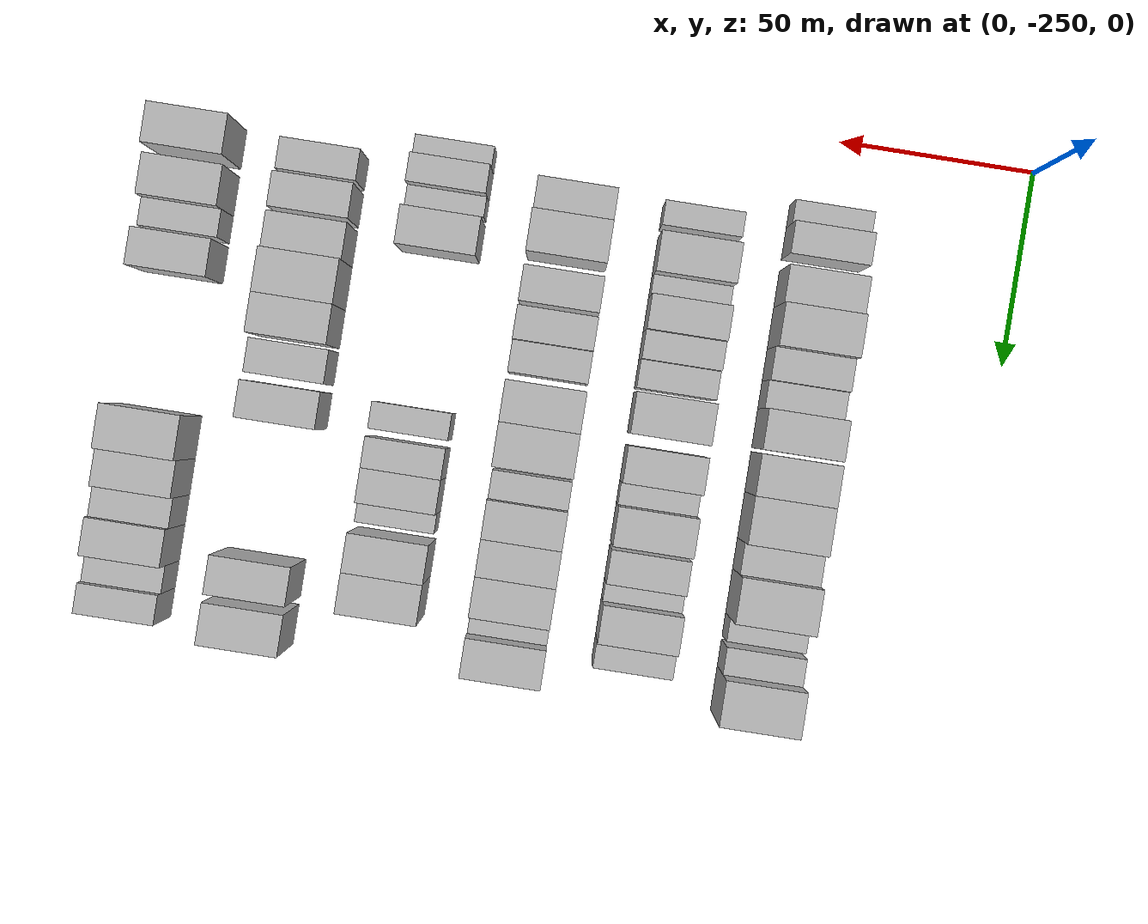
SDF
<sdf version="1.6">
 <world name="default">
  <model name="building_37">
   <static>1</static>
   <pose>50.0000 -229.1311 0 0.000000 0.000000 0.000000</pose>
   <link name="link">
    <pose>0 0 6.00 0 0 0</pose>
    <collision name="collision"><geometry><box><size>20.0000 5.9891 12.0000</size></box></geometry></collision>
    <visual name="visual">
     <cast_shadows>0</cast_shadows>
     <geometry><box><size>20.0000 5.9891 12.0000</size></box></geometry>
     <material>
      <script>
       <uri>model://HANNAS_wall/materials/scripts</uri>
       <uri>model://HANNAS_wall/materials/textures</uri>
       <name>vrc/HANNAS_wall</name>
      </script>
     </material>
    </visual>
   </link>
  </model>
  <model name="building_38">
   <static>1</static>
   <pose>50.0000 -222.0709 0 0.000000 0.000000 0.000000</pose>
   <link name="link">
    <pose>0 0 9.00 0 0 0</pose>
    <collision name="collision"><geometry><box><size>20.0000 8.1314 18.0000</size></box></geometry></collision>
    <visual name="visual">
     <cast_shadows>0</cast_shadows>
     <geometry><box><size>20.0000 8.1314 18.0000</size></box></geometry>
     <material>
      <script>
       <uri>model://HANNAS_wall/materials/scripts</uri>
       <uri>model://HANNAS_wall/materials/textures</uri>
       <name>vrc/HANNAS_wall</name>
      </script>
     </material>
    </visual>
   </link>
  </model>
  <model name="building_39">
   <static>1</static>
   <pose>50.0000 -210.2857 0 0.000000 0.000000 0.000000</pose>
   <link name="link">
    <pose>0 0 10.50 0 0 0</pose>
    <collision name="collision"><geometry><box><size>20.0000 9.4389 21.0000</size></box></geometry></collision>
    <visual name="visual">
     <cast_shadows>0</cast_shadows>
     <geometry><box><size>20.0000 9.4389 21.0000</size></box></geometry>
     <material>
      <script>
       <uri>model://HANNAS_wall/materials/scripts</uri>
       <uri>model://HANNAS_wall/materials/textures</uri>
       <name>vrc/HANNAS_wall</name>
      </script>
     </material>
    </visual>
   </link>
  </model>
  <model name="building_40">
   <static>1</static>
   <pose>50.0000 -200.2303 0 0.000000 0.000000 0.000000</pose>
   <link name="link">
    <pose>0 0 12.00 0 0 0</pose>
    <collision name="collision"><geometry><box><size>20.0000 10.6719 24.0000</size></box></geometry></collision>
    <visual name="visual">
     <cast_shadows>0</cast_shadows>
     <geometry><box><size>20.0000 10.6719 24.0000</size></box></geometry>
     <material>
      <script>
       <uri>model://HANNAS_wall/materials/scripts</uri>
       <uri>model://HANNAS_wall/materials/textures</uri>
       <name>vrc/HANNAS_wall</name>
      </script>
     </material>
    </visual>
   </link>
  </model>
  <model name="building_41">
   <static>1</static>
   <pose>50.0000 -190.7712 0 0.000000 0.000000 0.000000</pose>
   <link name="link">
    <pose>0 0 9.00 0 0 0</pose>
    <collision name="collision"><geometry><box><size>20.0000 8.2464 18.0000</size></box></geometry></collision>
    <visual name="visual">
     <cast_shadows>0</cast_shadows>
     <geometry><box><size>20.0000 8.2464 18.0000</size></box></geometry>
     <material>
      <script>
       <uri>model://HANNAS_wall/materials/scripts</uri>
       <uri>model://HANNAS_wall/materials/textures</uri>
       <name>vrc/HANNAS_wall</name>
      </script>
     </material>
    </visual>
   </link>
  </model>
  <model name="building_42">
   <static>1</static>
   <pose>50.0000 -183.0952 0 0.000000 0.000000 0.000000</pose>
   <link name="link">
    <pose>0 0 7.50 0 0 0</pose>
    <collision name="collision"><geometry><box><size>20.0000 7.1056 15.0000</size></box></geometry></collision>
    <visual name="visual">
     <cast_shadows>0</cast_shadows>
     <geometry><box><size>20.0000 7.1056 15.0000</size></box></geometry>
     <material>
      <script>
       <uri>model://HANNAS_wall/materials/scripts</uri>
       <uri>model://HANNAS_wall/materials/textures</uri>
       <name>vrc/HANNAS_wall</name>
      </script>
     </material>
    </visual>
   </link>
  </model>
  <model name="building_43">
   <static>1</static>
   <pose>50.0000 -174.5127 0 0.000000 0.000000 0.000000</pose>
   <link name="link">
    <pose>0 0 12.00 0 0 0</pose>
    <collision name="collision"><geometry><box><size>20.0000 10.0594 24.0000</size></box></geometry></collision>
    <visual name="visual">
     <cast_shadows>0</cast_shadows>
     <geometry><box><size>20.0000 10.0594 24.0000</size></box></geometry>
     <material>
      <script>
       <uri>model://HANNAS_wall/materials/scripts</uri>
       <uri>model://HANNAS_wall/materials/textures</uri>
       <name>vrc/HANNAS_wall</name>
      </script>
     </material>
    </visual>
   </link>
  </model>
  <model name="building_44">
   <static>1</static>
   <pose>50.0000 -163.3049 0 0.000000 0.000000 0.000000</pose>
   <link name="link">
    <pose>0 0 12.00 0 0 0</pose>
    <collision name="collision"><geometry><box><size>20.0000 10.3562 24.0000</size></box></geometry></collision>
    <visual name="visual">
     <cast_shadows>0</cast_shadows>
     <geometry><box><size>20.0000 10.3562 24.0000</size></box></geometry>
     <material>
      <script>
       <uri>model://HANNAS_wall/materials/scripts</uri>
       <uri>model://HANNAS_wall/materials/textures</uri>
       <name>vrc/HANNAS_wall</name>
      </script>
     </material>
    </visual>
   </link>
  </model>
  <model name="building_45">
   <static>1</static>
   <pose>50.0000 -152.1919 0 0.000000 0.000000 0.000000</pose>
   <link name="link">
    <pose>0 0 12.00 0 0 0</pose>
    <collision name="collision"><geometry><box><size>20.0000 11.8697 24.0000</size></box></geometry></collision>
    <visual name="visual">
     <cast_shadows>0</cast_shadows>
     <geometry><box><size>20.0000 11.8697 24.0000</size></box></geometry>
     <material>
      <script>
       <uri>model://HANNAS_wall/materials/scripts</uri>
       <uri>model://HANNAS_wall/materials/textures</uri>
       <name>vrc/HANNAS_wall</name>
      </script>
     </material>
    </visual>
   </link>
  </model>
  <model name="building_46">
   <static>1</static>
   <pose>50.0000 -142.2695 0 0.000000 0.000000 0.000000</pose>
   <link name="link">
    <pose>0 0 9.00 0 0 0</pose>
    <collision name="collision"><geometry><box><size>20.0000 7.9752 18.0000</size></box></geometry></collision>
    <visual name="visual">
     <cast_shadows>0</cast_shadows>
     <geometry><box><size>20.0000 7.9752 18.0000</size></box></geometry>
     <material>
      <script>
       <uri>model://HANNAS_wall/materials/scripts</uri>
       <uri>model://HANNAS_wall/materials/textures</uri>
       <name>vrc/HANNAS_wall</name>
      </script>
     </material>
    </visual>
   </link>
  </model>
  <model name="building_47">
   <static>1</static>
   <pose>50.0000 -132.5437 0 0.000000 0.000000 0.000000</pose>
   <link name="link">
    <pose>0 0 12.00 0 0 0</pose>
    <collision name="collision"><geometry><box><size>20.0000 11.4763 24.0000</size></box></geometry></collision>
    <visual name="visual">
     <cast_shadows>0</cast_shadows>
     <geometry><box><size>20.0000 11.4763 24.0000</size></box></geometry>
     <material>
      <script>
       <uri>model://HANNAS_wall/materials/scripts</uri>
       <uri>model://HANNAS_wall/materials/textures</uri>
       <name>vrc/HANNAS_wall</name>
      </script>
     </material>
    </visual>
   </link>
  </model>
  <model name="building_48">
   <static>1</static>
   <pose>50.0000 -123.8971 0 0.000000 0.000000 0.000000</pose>
   <link name="link">
    <pose>0 0 6.00 0 0 0</pose>
    <collision name="collision"><geometry><box><size>20.0000 5.8169 12.0000</size></box></geometry></collision>
    <visual name="visual">
     <cast_shadows>0</cast_shadows>
     <geometry><box><size>20.0000 5.8169 12.0000</size></box></geometry>
     <material>
      <script>
       <uri>model://HANNAS_wall/materials/scripts</uri>
       <uri>model://HANNAS_wall/materials/textures</uri>
       <name>vrc/HANNAS_wall</name>
      </script>
     </material>
    </visual>
   </link>
  </model>
  <model name="building_49">
   <static>1</static>
   <pose>50.0000 -116.5405 0 0.000000 0.000000 0.000000</pose>
   <link name="link">
    <pose>0 0 7.50 0 0 0</pose>
    <collision name="collision"><geometry><box><size>20.0000 6.8964 15.0000</size></box></geometry></collision>
    <visual name="visual">
     <cast_shadows>0</cast_shadows>
     <geometry><box><size>20.0000 6.8964 15.0000</size></box></geometry>
     <material>
      <script>
       <uri>model://HANNAS_wall/materials/scripts</uri>
       <uri>model://HANNAS_wall/materials/textures</uri>
       <name>vrc/HANNAS_wall</name>
      </script>
     </material>
    </visual>
   </link>
  </model>
  <model name="building_50">
   <static>1</static>
   <pose>50.0000 -107.3946 0 0.000000 0.000000 0.000000</pose>
   <link name="link">
    <pose>0 0 12.00 0 0 0</pose>
    <collision name="collision"><geometry><box><size>20.0000 11.3955 24.0000</size></box></geometry></collision>
    <visual name="visual">
     <cast_shadows>0</cast_shadows>
     <geometry><box><size>20.0000 11.3955 24.0000</size></box></geometry>
     <material>
      <script>
       <uri>model://HANNAS_wall/materials/scripts</uri>
       <uri>model://HANNAS_wall/materials/textures</uri>
       <name>vrc/HANNAS_wall</name>
      </script>
     </material>
    </visual>
   </link>
  </model>
  <model name="building_159">
   <static>1</static>
   <pose>82.0000 -223.4754 0 0.000000 0.000000 0.000000</pose>
   <link name="link">
    <pose>0 0 7.50 0 0 0</pose>
    <collision name="collision"><geometry><box><size>20.0000 6.2040 15.0000</size></box></geometry></collision>
    <visual name="visual">
     <cast_shadows>0</cast_shadows>
     <geometry><box><size>20.0000 6.2040 15.0000</size></box></geometry>
     <material>
      <script>
       <uri>model://HANNAS_wall/materials/scripts</uri>
       <uri>model://HANNAS_wall/materials/textures</uri>
       <name>vrc/HANNAS_wall</name>
      </script>
     </material>
    </visual>
   </link>
  </model>
  <model name="building_160">
   <static>1</static>
   <pose>82.0000 -213.3400 0 0.000000 0.000000 0.000000</pose>
   <link name="link">
    <pose>0 0 10.50 0 0 0</pose>
    <collision name="collision"><geometry><box><size>20.0000 10.0669 21.0000</size></box></geometry></collision>
    <visual name="visual">
     <cast_shadows>0</cast_shadows>
     <geometry><box><size>20.0000 10.0669 21.0000</size></box></geometry>
     <material>
      <script>
       <uri>model://HANNAS_wall/materials/scripts</uri>
       <uri>model://HANNAS_wall/materials/textures</uri>
       <name>vrc/HANNAS_wall</name>
      </script>
     </material>
    </visual>
   </link>
  </model>
  <model name="building_161">
   <static>1</static>
   <pose>82.0000 -205.5744 0 0.000000 0.000000 0.000000</pose>
   <link name="link">
    <pose>0 0 6.00 0 0 0</pose>
    <collision name="collision"><geometry><box><size>20.0000 5.4645 12.0000</size></box></geometry></collision>
    <visual name="visual">
     <cast_shadows>0</cast_shadows>
     <geometry><box><size>20.0000 5.4645 12.0000</size></box></geometry>
     <material>
      <script>
       <uri>model://HANNAS_wall/materials/scripts</uri>
       <uri>model://HANNAS_wall/materials/textures</uri>
       <name>vrc/HANNAS_wall</name>
      </script>
     </material>
    </visual>
   </link>
  </model>
  <model name="building_162">
   <static>1</static>
   <pose>82.0000 -198.4793 0 0.000000 0.000000 0.000000</pose>
   <link name="link">
    <pose>0 0 10.50 0 0 0</pose>
    <collision name="collision"><geometry><box><size>20.0000 8.7257 21.0000</size></box></geometry></collision>
    <visual name="visual">
     <cast_shadows>0</cast_shadows>
     <geometry><box><size>20.0000 8.7257 21.0000</size></box></geometry>
     <material>
      <script>
       <uri>model://HANNAS_wall/materials/scripts</uri>
       <uri>model://HANNAS_wall/materials/textures</uri>
       <name>vrc/HANNAS_wall</name>
      </script>
     </material>
    </visual>
   </link>
  </model>
  <model name="building_163">
   <static>1</static>
   <pose>82.0000 -190.4858 0 0.000000 0.000000 0.000000</pose>
   <link name="link">
    <pose>0 0 9.00 0 0 0</pose>
    <collision name="collision"><geometry><box><size>20.0000 7.2614 18.0000</size></box></geometry></collision>
    <visual name="visual">
     <cast_shadows>0</cast_shadows>
     <geometry><box><size>20.0000 7.2614 18.0000</size></box></geometry>
     <material>
      <script>
       <uri>model://HANNAS_wall/materials/scripts</uri>
       <uri>model://HANNAS_wall/materials/textures</uri>
       <name>vrc/HANNAS_wall</name>
      </script>
     </material>
    </visual>
   </link>
  </model>
  <model name="building_164">
   <static>1</static>
   <pose>82.0000 -183.2726 0 0.000000 0.000000 0.000000</pose>
   <link name="link">
    <pose>0 0 7.50 0 0 0</pose>
    <collision name="collision"><geometry><box><size>20.0000 7.1650 15.0000</size></box></geometry></collision>
    <visual name="visual">
     <cast_shadows>0</cast_shadows>
     <geometry><box><size>20.0000 7.1650 15.0000</size></box></geometry>
     <material>
      <script>
       <uri>model://HANNAS_wall/materials/scripts</uri>
       <uri>model://HANNAS_wall/materials/textures</uri>
       <name>vrc/HANNAS_wall</name>
      </script>
     </material>
    </visual>
   </link>
  </model>
  <model name="building_165">
   <static>1</static>
   <pose>82.0000 -173.5163 0 0.000000 0.000000 0.000000</pose>
   <link name="link">
    <pose>0 0 10.50 0 0 0</pose>
    <collision name="collision"><geometry><box><size>20.0000 10.3476 21.0000</size></box></geometry></collision>
    <visual name="visual">
     <cast_shadows>0</cast_shadows>
     <geometry><box><size>20.0000 10.3476 21.0000</size></box></geometry>
     <material>
      <script>
       <uri>model://HANNAS_wall/materials/scripts</uri>
       <uri>model://HANNAS_wall/materials/textures</uri>
       <name>vrc/HANNAS_wall</name>
      </script>
     </material>
    </visual>
   </link>
  </model>
  <model name="building_166">
   <static>1</static>
   <pose>82.0000 -160.7306 0 0.000000 0.000000 0.000000</pose>
   <link name="link">
    <pose>0 0 10.50 0 0 0</pose>
    <collision name="collision"><geometry><box><size>20.0000 9.2237 21.0000</size></box></geometry></collision>
    <visual name="visual">
     <cast_shadows>0</cast_shadows>
     <geometry><box><size>20.0000 9.2237 21.0000</size></box></geometry>
     <material>
      <script>
       <uri>model://HANNAS_wall/materials/scripts</uri>
       <uri>model://HANNAS_wall/materials/textures</uri>
       <name>vrc/HANNAS_wall</name>
      </script>
     </material>
    </visual>
   </link>
  </model>
  <model name="building_167">
   <static>1</static>
   <pose>82.0000 -153.2493 0 0.000000 0.000000 0.000000</pose>
   <link name="link">
    <pose>0 0 6.00 0 0 0</pose>
    <collision name="collision"><geometry><box><size>20.0000 5.7389 12.0000</size></box></geometry></collision>
    <visual name="visual">
     <cast_shadows>0</cast_shadows>
     <geometry><box><size>20.0000 5.7389 12.0000</size></box></geometry>
     <material>
      <script>
       <uri>model://HANNAS_wall/materials/scripts</uri>
       <uri>model://HANNAS_wall/materials/textures</uri>
       <name>vrc/HANNAS_wall</name>
      </script>
     </material>
    </visual>
   </link>
  </model>
  <model name="building_168">
   <static>1</static>
   <pose>82.0000 -145.4439 0 0.000000 0.000000 0.000000</pose>
   <link name="link">
    <pose>0 0 10.50 0 0 0</pose>
    <collision name="collision"><geometry><box><size>20.0000 9.8719 21.0000</size></box></geometry></collision>
    <visual name="visual">
     <cast_shadows>0</cast_shadows>
     <geometry><box><size>20.0000 9.8719 21.0000</size></box></geometry>
     <material>
      <script>
       <uri>model://HANNAS_wall/materials/scripts</uri>
       <uri>model://HANNAS_wall/materials/textures</uri>
       <name>vrc/HANNAS_wall</name>
      </script>
     </material>
    </visual>
   </link>
  </model>
  <model name="building_169">
   <static>1</static>
   <pose>82.0000 -135.2447 0 0.000000 0.000000 0.000000</pose>
   <link name="link">
    <pose>0 0 9.00 0 0 0</pose>
    <collision name="collision"><geometry><box><size>20.0000 8.5265 18.0000</size></box></geometry></collision>
    <visual name="visual">
     <cast_shadows>0</cast_shadows>
     <geometry><box><size>20.0000 8.5265 18.0000</size></box></geometry>
     <material>
      <script>
       <uri>model://HANNAS_wall/materials/scripts</uri>
       <uri>model://HANNAS_wall/materials/textures</uri>
       <name>vrc/HANNAS_wall</name>
      </script>
     </material>
    </visual>
   </link>
  </model>
  <model name="building_170">
   <static>1</static>
   <pose>82.0000 -128.5446 0 0.000000 0.000000 0.000000</pose>
   <link name="link">
    <pose>0 0 6.00 0 0 0</pose>
    <collision name="collision"><geometry><box><size>20.0000 4.8736 12.0000</size></box></geometry></collision>
    <visual name="visual">
     <cast_shadows>0</cast_shadows>
     <geometry><box><size>20.0000 4.8736 12.0000</size></box></geometry>
     <material>
      <script>
       <uri>model://HANNAS_wall/materials/scripts</uri>
       <uri>model://HANNAS_wall/materials/textures</uri>
       <name>vrc/HANNAS_wall</name>
      </script>
     </material>
    </visual>
   </link>
  </model>
  <model name="building_171">
   <static>1</static>
   <pose>82.0000 -121.3181 0 0.000000 0.000000 0.000000</pose>
   <link name="link">
    <pose>0 0 10.50 0 0 0</pose>
    <collision name="collision"><geometry><box><size>20.0000 9.5793 21.0000</size></box></geometry></collision>
    <visual name="visual">
     <cast_shadows>0</cast_shadows>
     <geometry><box><size>20.0000 9.5793 21.0000</size></box></geometry>
     <material>
      <script>
       <uri>model://HANNAS_wall/materials/scripts</uri>
       <uri>model://HANNAS_wall/materials/textures</uri>
       <name>vrc/HANNAS_wall</name>
      </script>
     </material>
    </visual>
   </link>
  </model>
  <model name="building_172">
   <static>1</static>
   <pose>82.0000 -113.1577 0 0.000000 0.000000 0.000000</pose>
   <link name="link">
    <pose>0 0 7.50 0 0 0</pose>
    <collision name="collision"><geometry><box><size>20.0000 6.7416 15.0000</size></box></geometry></collision>
    <visual name="visual">
     <cast_shadows>0</cast_shadows>
     <geometry><box><size>20.0000 6.7416 15.0000</size></box></geometry>
     <material>
      <script>
       <uri>model://HANNAS_wall/materials/scripts</uri>
       <uri>model://HANNAS_wall/materials/textures</uri>
       <name>vrc/HANNAS_wall</name>
      </script>
     </material>
    </visual>
   </link>
  </model>
  <model name="building_279">
   <static>1</static>
   <pose>114.0000 -222.8635 0 0.000000 0.000000 0.000000</pose>
   <link name="link">
    <pose>0 0 9.00 0 0 0</pose>
    <collision name="collision"><geometry><box><size>20.0000 8.7250 18.0000</size></box></geometry></collision>
    <visual name="visual">
     <cast_shadows>0</cast_shadows>
     <geometry><box><size>20.0000 8.7250 18.0000</size></box></geometry>
     <material>
      <script>
       <uri>model://HANNAS_wall/materials/scripts</uri>
       <uri>model://HANNAS_wall/materials/textures</uri>
       <name>vrc/HANNAS_wall</name>
      </script>
     </material>
    </visual>
   </link>
  </model>
  <model name="building_280">
   <static>1</static>
   <pose>114.0000 -213.2306 0 0.000000 0.000000 0.000000</pose>
   <link name="link">
    <pose>0 0 12.00 0 0 0</pose>
    <collision name="collision"><geometry><box><size>20.0000 10.5408 24.0000</size></box></geometry></collision>
    <visual name="visual">
     <cast_shadows>0</cast_shadows>
     <geometry><box><size>20.0000 10.5408 24.0000</size></box></geometry>
     <material>
      <script>
       <uri>model://HANNAS_wall/materials/scripts</uri>
       <uri>model://HANNAS_wall/materials/textures</uri>
       <name>vrc/HANNAS_wall</name>
      </script>
     </material>
    </visual>
   </link>
  </model>
  <model name="building_281">
   <static>1</static>
   <pose>114.0000 -200.4887 0 0.000000 0.000000 0.000000</pose>
   <link name="link">
    <pose>0 0 10.50 0 0 0</pose>
    <collision name="collision"><geometry><box><size>20.0000 8.9430 21.0000</size></box></geometry></collision>
    <visual name="visual">
     <cast_shadows>0</cast_shadows>
     <geometry><box><size>20.0000 8.9430 21.0000</size></box></geometry>
     <material>
      <script>
       <uri>model://HANNAS_wall/materials/scripts</uri>
       <uri>model://HANNAS_wall/materials/textures</uri>
       <name>vrc/HANNAS_wall</name>
      </script>
     </material>
    </visual>
   </link>
  </model>
  <model name="building_282">
   <static>1</static>
   <pose>114.0000 -190.8128 0 0.000000 0.000000 0.000000</pose>
   <link name="link">
    <pose>0 0 10.50 0 0 0</pose>
    <collision name="collision"><geometry><box><size>20.0000 8.4088 21.0000</size></box></geometry></collision>
    <visual name="visual">
     <cast_shadows>0</cast_shadows>
     <geometry><box><size>20.0000 8.4088 21.0000</size></box></geometry>
     <material>
      <script>
       <uri>model://HANNAS_wall/materials/scripts</uri>
       <uri>model://HANNAS_wall/materials/textures</uri>
       <name>vrc/HANNAS_wall</name>
      </script>
     </material>
    </visual>
   </link>
  </model>
  <model name="building_283">
   <static>1</static>
   <pose>114.0000 -182.5916 0 0.000000 0.000000 0.000000</pose>
   <link name="link">
    <pose>0 0 9.00 0 0 0</pose>
    <collision name="collision"><geometry><box><size>20.0000 8.0336 18.0000</size></box></geometry></collision>
    <visual name="visual">
     <cast_shadows>0</cast_shadows>
     <geometry><box><size>20.0000 8.0336 18.0000</size></box></geometry>
     <material>
      <script>
       <uri>model://HANNAS_wall/materials/scripts</uri>
       <uri>model://HANNAS_wall/materials/textures</uri>
       <name>vrc/HANNAS_wall</name>
      </script>
     </material>
    </visual>
   </link>
  </model>
  <model name="building_284">
   <static>1</static>
   <pose>114.0000 -171.3998 0 0.000000 0.000000 0.000000</pose>
   <link name="link">
    <pose>0 0 12.00 0 0 0</pose>
    <collision name="collision"><geometry><box><size>20.0000 10.3501 24.0000</size></box></geometry></collision>
    <visual name="visual">
     <cast_shadows>0</cast_shadows>
     <geometry><box><size>20.0000 10.3501 24.0000</size></box></geometry>
     <material>
      <script>
       <uri>model://HANNAS_wall/materials/scripts</uri>
       <uri>model://HANNAS_wall/materials/textures</uri>
       <name>vrc/HANNAS_wall</name>
      </script>
     </material>
    </visual>
   </link>
  </model>
  <model name="building_285">
   <static>1</static>
   <pose>114.0000 -160.7141 0 0.000000 0.000000 0.000000</pose>
   <link name="link">
    <pose>0 0 12.00 0 0 0</pose>
    <collision name="collision"><geometry><box><size>20.0000 11.0211 24.0000</size></box></geometry></collision>
    <visual name="visual">
     <cast_shadows>0</cast_shadows>
     <geometry><box><size>20.0000 11.0211 24.0000</size></box></geometry>
     <material>
      <script>
       <uri>model://HANNAS_wall/materials/scripts</uri>
       <uri>model://HANNAS_wall/materials/textures</uri>
       <name>vrc/HANNAS_wall</name>
      </script>
     </material>
    </visual>
   </link>
  </model>
  <model name="building_286">
   <static>1</static>
   <pose>114.0000 -150.6014 0 0.000000 0.000000 0.000000</pose>
   <link name="link">
    <pose>0 0 7.50 0 0 0</pose>
    <collision name="collision"><geometry><box><size>20.0000 7.2043 15.0000</size></box></geometry></collision>
    <visual name="visual">
     <cast_shadows>0</cast_shadows>
     <geometry><box><size>20.0000 7.2043 15.0000</size></box></geometry>
     <material>
      <script>
       <uri>model://HANNAS_wall/materials/scripts</uri>
       <uri>model://HANNAS_wall/materials/textures</uri>
       <name>vrc/HANNAS_wall</name>
      </script>
     </material>
    </visual>
   </link>
  </model>
  <model name="building_287">
   <static>1</static>
   <pose>114.0000 -142.1306 0 0.000000 0.000000 0.000000</pose>
   <link name="link">
    <pose>0 0 10.50 0 0 0</pose>
    <collision name="collision"><geometry><box><size>20.0000 9.7373 21.0000</size></box></geometry></collision>
    <visual name="visual">
     <cast_shadows>0</cast_shadows>
     <geometry><box><size>20.0000 9.7373 21.0000</size></box></geometry>
     <material>
      <script>
       <uri>model://HANNAS_wall/materials/scripts</uri>
       <uri>model://HANNAS_wall/materials/textures</uri>
       <name>vrc/HANNAS_wall</name>
      </script>
     </material>
    </visual>
   </link>
  </model>
  <model name="building_288">
   <static>1</static>
   <pose>114.0000 -132.6414 0 0.000000 0.000000 0.000000</pose>
   <link name="link">
    <pose>0 0 10.50 0 0 0</pose>
    <collision name="collision"><geometry><box><size>20.0000 9.2411 21.0000</size></box></geometry></collision>
    <visual name="visual">
     <cast_shadows>0</cast_shadows>
     <geometry><box><size>20.0000 9.2411 21.0000</size></box></geometry>
     <material>
      <script>
       <uri>model://HANNAS_wall/materials/scripts</uri>
       <uri>model://HANNAS_wall/materials/textures</uri>
       <name>vrc/HANNAS_wall</name>
      </script>
     </material>
    </visual>
   </link>
  </model>
  <model name="building_289">
   <static>1</static>
   <pose>114.0000 -122.9767 0 0.000000 0.000000 0.000000</pose>
   <link name="link">
    <pose>0 0 10.50 0 0 0</pose>
    <collision name="collision"><geometry><box><size>20.0000 10.0884 21.0000</size></box></geometry></collision>
    <visual name="visual">
     <cast_shadows>0</cast_shadows>
     <geometry><box><size>20.0000 10.0884 21.0000</size></box></geometry>
     <material>
      <script>
       <uri>model://HANNAS_wall/materials/scripts</uri>
       <uri>model://HANNAS_wall/materials/textures</uri>
       <name>vrc/HANNAS_wall</name>
      </script>
     </material>
    </visual>
   </link>
  </model>
  <model name="building_290">
   <static>1</static>
   <pose>114.0000 -115.4494 0 0.000000 0.000000 0.000000</pose>
   <link name="link">
    <pose>0 0 6.00 0 0 0</pose>
    <collision name="collision"><geometry><box><size>20.0000 4.9661 12.0000</size></box></geometry></collision>
    <visual name="visual">
     <cast_shadows>0</cast_shadows>
     <geometry><box><size>20.0000 4.9661 12.0000</size></box></geometry>
     <material>
      <script>
       <uri>model://HANNAS_wall/materials/scripts</uri>
       <uri>model://HANNAS_wall/materials/textures</uri>
       <name>vrc/HANNAS_wall</name>
      </script>
     </material>
    </visual>
   </link>
  </model>
  <model name="building_291">
   <static>1</static>
   <pose>114.0000 -108.0243 0 0.000000 0.000000 0.000000</pose>
   <link name="link">
    <pose>0 0 10.50 0 0 0</pose>
    <collision name="collision"><geometry><box><size>20.0000 9.8841 21.0000</size></box></geometry></collision>
    <visual name="visual">
     <cast_shadows>0</cast_shadows>
     <geometry><box><size>20.0000 9.8841 21.0000</size></box></geometry>
     <material>
      <script>
       <uri>model://HANNAS_wall/materials/scripts</uri>
       <uri>model://HANNAS_wall/materials/textures</uri>
       <name>vrc/HANNAS_wall</name>
      </script>
     </material>
    </visual>
   </link>
  </model>
  <model name="building_393">
   <static>1</static>
   <pose>146.0000 -230.7259 0 0.000000 0.000000 0.000000</pose>
   <link name="link">
    <pose>0 0 6.00 0 0 0</pose>
    <collision name="collision"><geometry><box><size>20.0000 5.4463 12.0000</size></box></geometry></collision>
    <visual name="visual">
     <cast_shadows>0</cast_shadows>
     <geometry><box><size>20.0000 5.4463 12.0000</size></box></geometry>
     <material>
      <script>
       <uri>model://HANNAS_wall/materials/scripts</uri>
       <uri>model://HANNAS_wall/materials/textures</uri>
       <name>vrc/HANNAS_wall</name>
      </script>
     </material>
    </visual>
   </link>
  </model>
  <model name="building_394">
   <static>1</static>
   <pose>146.0000 -224.3953 0 0.000000 0.000000 0.000000</pose>
   <link name="link">
    <pose>0 0 9.00 0 0 0</pose>
    <collision name="collision"><geometry><box><size>20.0000 7.2148 18.0000</size></box></geometry></collision>
    <visual name="visual">
     <cast_shadows>0</cast_shadows>
     <geometry><box><size>20.0000 7.2148 18.0000</size></box></geometry>
     <material>
      <script>
       <uri>model://HANNAS_wall/materials/scripts</uri>
       <uri>model://HANNAS_wall/materials/textures</uri>
       <name>vrc/HANNAS_wall</name>
      </script>
     </material>
    </visual>
   </link>
  </model>
  <model name="building_395">
   <static>1</static>
   <pose>146.0000 -218.2024 0 0.000000 0.000000 0.000000</pose>
   <link name="link">
    <pose>0 0 6.00 0 0 0</pose>
    <collision name="collision"><geometry><box><size>20.0000 5.1711 12.0000</size></box></geometry></collision>
    <visual name="visual">
     <cast_shadows>0</cast_shadows>
     <geometry><box><size>20.0000 5.1711 12.0000</size></box></geometry>
     <material>
      <script>
       <uri>model://HANNAS_wall/materials/scripts</uri>
       <uri>model://HANNAS_wall/materials/textures</uri>
       <name>vrc/HANNAS_wall</name>
      </script>
     </material>
    </visual>
   </link>
  </model>
  <model name="building_396">
   <static>1</static>
   <pose>146.0000 -209.8257 0 0.000000 0.000000 0.000000</pose>
   <link name="link">
    <pose>0 0 10.50 0 0 0</pose>
    <collision name="collision"><geometry><box><size>20.0000 9.5822 21.0000</size></box></geometry></collision>
    <visual name="visual">
     <cast_shadows>0</cast_shadows>
     <geometry><box><size>20.0000 9.5822 21.0000</size></box></geometry>
     <material>
      <script>
       <uri>model://HANNAS_wall/materials/scripts</uri>
       <uri>model://HANNAS_wall/materials/textures</uri>
       <name>vrc/HANNAS_wall</name>
      </script>
     </material>
    </visual>
   </link>
  </model>
  <model name="building_397">
   <static>1</static>
   <pose>146.0000 -162.8898 0 0.000000 0.000000 0.000000</pose>
   <link name="link">
    <pose>0 0 7.50 0 0 0</pose>
    <collision name="collision"><geometry><box><size>20.0000 6.7632 15.0000</size></box></geometry></collision>
    <visual name="visual">
     <cast_shadows>0</cast_shadows>
     <geometry><box><size>20.0000 6.7632 15.0000</size></box></geometry>
     <material>
      <script>
       <uri>model://HANNAS_wall/materials/scripts</uri>
       <uri>model://HANNAS_wall/materials/textures</uri>
       <name>vrc/HANNAS_wall</name>
      </script>
     </material>
    </visual>
   </link>
  </model>
  <model name="building_398">
   <static>1</static>
   <pose>146.0000 -153.6223 0 0.000000 0.000000 0.000000</pose>
   <link name="link">
    <pose>0 0 9.00 0 0 0</pose>
    <collision name="collision"><geometry><box><size>20.0000 7.7718 18.0000</size></box></geometry></collision>
    <visual name="visual">
     <cast_shadows>0</cast_shadows>
     <geometry><box><size>20.0000 7.7718 18.0000</size></box></geometry>
     <material>
      <script>
       <uri>model://HANNAS_wall/materials/scripts</uri>
       <uri>model://HANNAS_wall/materials/textures</uri>
       <name>vrc/HANNAS_wall</name>
      </script>
     </material>
    </visual>
   </link>
  </model>
  <model name="building_399">
   <static>1</static>
   <pose>146.0000 -145.3928 0 0.000000 0.000000 0.000000</pose>
   <link name="link">
    <pose>0 0 9.00 0 0 0</pose>
    <collision name="collision"><geometry><box><size>20.0000 8.6873 18.0000</size></box></geometry></collision>
    <visual name="visual">
     <cast_shadows>0</cast_shadows>
     <geometry><box><size>20.0000 8.6873 18.0000</size></box></geometry>
     <material>
      <script>
       <uri>model://HANNAS_wall/materials/scripts</uri>
       <uri>model://HANNAS_wall/materials/textures</uri>
       <name>vrc/HANNAS_wall</name>
      </script>
     </material>
    </visual>
   </link>
  </model>
  <model name="building_400">
   <static>1</static>
   <pose>146.0000 -138.5187 0 0.000000 0.000000 0.000000</pose>
   <link name="link">
    <pose>0 0 6.00 0 0 0</pose>
    <collision name="collision"><geometry><box><size>20.0000 5.0609 12.0000</size></box></geometry></collision>
    <visual name="visual">
     <cast_shadows>0</cast_shadows>
     <geometry><box><size>20.0000 5.0609 12.0000</size></box></geometry>
     <material>
      <script>
       <uri>model://HANNAS_wall/materials/scripts</uri>
       <uri>model://HANNAS_wall/materials/textures</uri>
       <name>vrc/HANNAS_wall</name>
      </script>
     </material>
    </visual>
   </link>
  </model>
  <model name="building_401">
   <static>1</static>
   <pose>146.0000 -129.1383 0 0.000000 0.000000 0.000000</pose>
   <link name="link">
    <pose>0 0 12.00 0 0 0</pose>
    <collision name="collision"><geometry><box><size>20.0000 9.7000 24.0000</size></box></geometry></collision>
    <visual name="visual">
     <cast_shadows>0</cast_shadows>
     <geometry><box><size>20.0000 9.7000 24.0000</size></box></geometry>
     <material>
      <script>
       <uri>model://HANNAS_wall/materials/scripts</uri>
       <uri>model://HANNAS_wall/materials/textures</uri>
       <name>vrc/HANNAS_wall</name>
      </script>
     </material>
    </visual>
   </link>
  </model>
  <model name="building_402">
   <static>1</static>
   <pose>146.0000 -119.2692 0 0.000000 0.000000 0.000000</pose>
   <link name="link">
    <pose>0 0 12.00 0 0 0</pose>
    <collision name="collision"><geometry><box><size>20.0000 10.0382 24.0000</size></box></geometry></collision>
    <visual name="visual">
     <cast_shadows>0</cast_shadows>
     <geometry><box><size>20.0000 10.0382 24.0000</size></box></geometry>
     <material>
      <script>
       <uri>model://HANNAS_wall/materials/scripts</uri>
       <uri>model://HANNAS_wall/materials/textures</uri>
       <name>vrc/HANNAS_wall</name>
      </script>
     </material>
    </visual>
   </link>
  </model>
  <model name="building_515">
   <static>1</static>
   <pose>178.0000 -222.8401 0 0.000000 0.000000 0.000000</pose>
   <link name="link">
    <pose>0 0 9.00 0 0 0</pose>
    <collision name="collision"><geometry><box><size>20.0000 7.8616 18.0000</size></box></geometry></collision>
    <visual name="visual">
     <cast_shadows>0</cast_shadows>
     <geometry><box><size>20.0000 7.8616 18.0000</size></box></geometry>
     <material>
      <script>
       <uri>model://HANNAS_wall/materials/scripts</uri>
       <uri>model://HANNAS_wall/materials/textures</uri>
       <name>vrc/HANNAS_wall</name>
      </script>
     </material>
    </visual>
   </link>
  </model>
  <model name="building_516">
   <static>1</static>
   <pose>178.0000 -213.5523 0 0.000000 0.000000 0.000000</pose>
   <link name="link">
    <pose>0 0 10.50 0 0 0</pose>
    <collision name="collision"><geometry><box><size>20.0000 8.7140 21.0000</size></box></geometry></collision>
    <visual name="visual">
     <cast_shadows>0</cast_shadows>
     <geometry><box><size>20.0000 8.7140 21.0000</size></box></geometry>
     <material>
      <script>
       <uri>model://HANNAS_wall/materials/scripts</uri>
       <uri>model://HANNAS_wall/materials/textures</uri>
       <name>vrc/HANNAS_wall</name>
      </script>
     </material>
    </visual>
   </link>
  </model>
  <model name="building_517">
   <static>1</static>
   <pose>178.0000 -203.6107 0 0.000000 0.000000 0.000000</pose>
   <link name="link">
    <pose>0 0 10.50 0 0 0</pose>
    <collision name="collision"><geometry><box><size>20.0000 9.1693 21.0000</size></box></geometry></collision>
    <visual name="visual">
     <cast_shadows>0</cast_shadows>
     <geometry><box><size>20.0000 9.1693 21.0000</size></box></geometry>
     <material>
      <script>
       <uri>model://HANNAS_wall/materials/scripts</uri>
       <uri>model://HANNAS_wall/materials/textures</uri>
       <name>vrc/HANNAS_wall</name>
      </script>
     </material>
    </visual>
   </link>
  </model>
  <model name="building_518">
   <static>1</static>
   <pose>178.0000 -193.4658 0 0.000000 0.000000 0.000000</pose>
   <link name="link">
    <pose>0 0 12.00 0 0 0</pose>
    <collision name="collision"><geometry><box><size>20.0000 11.1204 24.0000</size></box></geometry></collision>
    <visual name="visual">
     <cast_shadows>0</cast_shadows>
     <geometry><box><size>20.0000 11.1204 24.0000</size></box></geometry>
     <material>
      <script>
       <uri>model://HANNAS_wall/materials/scripts</uri>
       <uri>model://HANNAS_wall/materials/textures</uri>
       <name>vrc/HANNAS_wall</name>
      </script>
     </material>
    </visual>
   </link>
  </model>
  <model name="building_519">
   <static>1</static>
   <pose>178.0000 -182.9589 0 0.000000 0.000000 0.000000</pose>
   <link name="link">
    <pose>0 0 12.00 0 0 0</pose>
    <collision name="collision"><geometry><box><size>20.0000 9.8934 24.0000</size></box></geometry></collision>
    <visual name="visual">
     <cast_shadows>0</cast_shadows>
     <geometry><box><size>20.0000 9.8934 24.0000</size></box></geometry>
     <material>
      <script>
       <uri>model://HANNAS_wall/materials/scripts</uri>
       <uri>model://HANNAS_wall/materials/textures</uri>
       <name>vrc/HANNAS_wall</name>
      </script>
     </material>
    </visual>
   </link>
  </model>
  <model name="building_520">
   <static>1</static>
   <pose>178.0000 -172.7530 0 0.000000 0.000000 0.000000</pose>
   <link name="link">
    <pose>0 0 9.00 0 0 0</pose>
    <collision name="collision"><geometry><box><size>20.0000 8.5184 18.0000</size></box></geometry></collision>
    <visual name="visual">
     <cast_shadows>0</cast_shadows>
     <geometry><box><size>20.0000 8.5184 18.0000</size></box></geometry>
     <material>
      <script>
       <uri>model://HANNAS_wall/materials/scripts</uri>
       <uri>model://HANNAS_wall/materials/textures</uri>
       <name>vrc/HANNAS_wall</name>
      </script>
     </material>
    </visual>
   </link>
  </model>
  <model name="building_521">
   <static>1</static>
   <pose>178.0000 -161.8715 0 0.000000 0.000000 0.000000</pose>
   <link name="link">
    <pose>0 0 10.50 0 0 0</pose>
    <collision name="collision"><geometry><box><size>20.0000 9.2446 21.0000</size></box></geometry></collision>
    <visual name="visual">
     <cast_shadows>0</cast_shadows>
     <geometry><box><size>20.0000 9.2446 21.0000</size></box></geometry>
     <material>
      <script>
       <uri>model://HANNAS_wall/materials/scripts</uri>
       <uri>model://HANNAS_wall/materials/textures</uri>
       <name>vrc/HANNAS_wall</name>
      </script>
     </material>
    </visual>
   </link>
  </model>
  <model name="building_522">
   <static>1</static>
   <pose>178.0000 -118.7936 0 0.000000 0.000000 0.000000</pose>
   <link name="link">
    <pose>0 0 12.00 0 0 0</pose>
    <collision name="collision"><geometry><box><size>20.0000 9.6370 24.0000</size></box></geometry></collision>
    <visual name="visual">
     <cast_shadows>0</cast_shadows>
     <geometry><box><size>20.0000 9.6370 24.0000</size></box></geometry>
     <material>
      <script>
       <uri>model://HANNAS_wall/materials/scripts</uri>
       <uri>model://HANNAS_wall/materials/textures</uri>
       <name>vrc/HANNAS_wall</name>
      </script>
     </material>
    </visual>
   </link>
  </model>
  <model name="building_523">
   <static>1</static>
   <pose>178.0000 -106.7755 0 0.000000 0.000000 0.000000</pose>
   <link name="link">
    <pose>0 0 12.00 0 0 0</pose>
    <collision name="collision"><geometry><box><size>20.0000 10.3993 24.0000</size></box></geometry></collision>
    <visual name="visual">
     <cast_shadows>0</cast_shadows>
     <geometry><box><size>20.0000 10.3993 24.0000</size></box></geometry>
     <material>
      <script>
       <uri>model://HANNAS_wall/materials/scripts</uri>
       <uri>model://HANNAS_wall/materials/textures</uri>
       <name>vrc/HANNAS_wall</name>
      </script>
     </material>
    </visual>
   </link>
  </model>
  <model name="building_628">
   <static>1</static>
   <pose>210.0000 -224.3881 0 0.000000 0.000000 0.000000</pose>
   <link name="link">
    <pose>0 0 12.00 0 0 0</pose>
    <collision name="collision"><geometry><box><size>20.0000 9.9835 24.0000</size></box></geometry></collision>
    <visual name="visual">
     <cast_shadows>0</cast_shadows>
     <geometry><box><size>20.0000 9.9835 24.0000</size></box></geometry>
     <material>
      <script>
       <uri>model://HANNAS_wall/materials/scripts</uri>
       <uri>model://HANNAS_wall/materials/textures</uri>
       <name>vrc/HANNAS_wall</name>
      </script>
     </material>
    </visual>
   </link>
  </model>
  <model name="building_629">
   <static>1</static>
   <pose>210.0000 -212.3015 0 0.000000 0.000000 0.000000</pose>
   <link name="link">
    <pose>0 0 10.50 0 0 0</pose>
    <collision name="collision"><geometry><box><size>20.0000 10.1898 21.0000</size></box></geometry></collision>
    <visual name="visual">
     <cast_shadows>0</cast_shadows>
     <geometry><box><size>20.0000 10.1898 21.0000</size></box></geometry>
     <material>
      <script>
       <uri>model://HANNAS_wall/materials/scripts</uri>
       <uri>model://HANNAS_wall/materials/textures</uri>
       <name>vrc/HANNAS_wall</name>
      </script>
     </material>
    </visual>
   </link>
  </model>
  <model name="building_630">
   <static>1</static>
   <pose>210.0000 -203.6740 0 0.000000 0.000000 0.000000</pose>
   <link name="link">
    <pose>0 0 7.50 0 0 0</pose>
    <collision name="collision"><geometry><box><size>20.0000 7.0652 15.0000</size></box></geometry></collision>
    <visual name="visual">
     <cast_shadows>0</cast_shadows>
     <geometry><box><size>20.0000 7.0652 15.0000</size></box></geometry>
     <material>
      <script>
       <uri>model://HANNAS_wall/materials/scripts</uri>
       <uri>model://HANNAS_wall/materials/textures</uri>
       <name>vrc/HANNAS_wall</name>
      </script>
     </material>
    </visual>
   </link>
  </model>
  <model name="building_631">
   <static>1</static>
   <pose>210.0000 -194.4504 0 0.000000 0.000000 0.000000</pose>
   <link name="link">
    <pose>0 0 10.50 0 0 0</pose>
    <collision name="collision"><geometry><box><size>20.0000 9.3821 21.0000</size></box></geometry></collision>
    <visual name="visual">
     <cast_shadows>0</cast_shadows>
     <geometry><box><size>20.0000 9.3821 21.0000</size></box></geometry>
     <material>
      <script>
       <uri>model://HANNAS_wall/materials/scripts</uri>
       <uri>model://HANNAS_wall/materials/textures</uri>
       <name>vrc/HANNAS_wall</name>
      </script>
     </material>
    </visual>
   </link>
  </model>
  <model name="building_632">
   <static>1</static>
   <pose>210.0000 -150.1474 0 0.000000 0.000000 0.000000</pose>
   <link name="link">
    <pose>0 0 12.00 0 0 0</pose>
    <collision name="collision"><geometry><box><size>20.0000 11.0746 24.0000</size></box></geometry></collision>
    <visual name="visual">
     <cast_shadows>0</cast_shadows>
     <geometry><box><size>20.0000 11.0746 24.0000</size></box></geometry>
     <material>
      <script>
       <uri>model://HANNAS_wall/materials/scripts</uri>
       <uri>model://HANNAS_wall/materials/textures</uri>
       <name>vrc/HANNAS_wall</name>
      </script>
     </material>
    </visual>
   </link>
  </model>
  <model name="building_633">
   <static>1</static>
   <pose>210.0000 -139.9325 0 0.000000 0.000000 0.000000</pose>
   <link name="link">
    <pose>0 0 10.50 0 0 0</pose>
    <collision name="collision"><geometry><box><size>20.0000 9.3553 21.0000</size></box></geometry></collision>
    <visual name="visual">
     <cast_shadows>0</cast_shadows>
     <geometry><box><size>20.0000 9.3553 21.0000</size></box></geometry>
     <material>
      <script>
       <uri>model://HANNAS_wall/materials/scripts</uri>
       <uri>model://HANNAS_wall/materials/textures</uri>
       <name>vrc/HANNAS_wall</name>
      </script>
     </material>
    </visual>
   </link>
  </model>
  <model name="building_634">
   <static>1</static>
   <pose>210.0000 -131.4278 0 0.000000 0.000000 0.000000</pose>
   <link name="link">
    <pose>0 0 9.00 0 0 0</pose>
    <collision name="collision"><geometry><box><size>20.0000 7.6541 18.0000</size></box></geometry></collision>
    <visual name="visual">
     <cast_shadows>0</cast_shadows>
     <geometry><box><size>20.0000 7.6541 18.0000</size></box></geometry>
     <material>
      <script>
       <uri>model://HANNAS_wall/materials/scripts</uri>
       <uri>model://HANNAS_wall/materials/textures</uri>
       <name>vrc/HANNAS_wall</name>
      </script>
     </material>
    </visual>
   </link>
  </model>
  <model name="building_635">
   <static>1</static>
   <pose>210.0000 -122.8847 0 0.000000 0.000000 0.000000</pose>
   <link name="link">
    <pose>0 0 10.50 0 0 0</pose>
    <collision name="collision"><geometry><box><size>20.0000 9.4320 21.0000</size></box></geometry></collision>
    <visual name="visual">
     <cast_shadows>0</cast_shadows>
     <geometry><box><size>20.0000 9.4320 21.0000</size></box></geometry>
     <material>
      <script>
       <uri>model://HANNAS_wall/materials/scripts</uri>
       <uri>model://HANNAS_wall/materials/textures</uri>
       <name>vrc/HANNAS_wall</name>
      </script>
     </material>
    </visual>
   </link>
  </model>
  <model name="building_636">
   <static>1</static>
   <pose>210.0000 -114.6634 0 0.000000 0.000000 0.000000</pose>
   <link name="link">
    <pose>0 0 7.50 0 0 0</pose>
    <collision name="collision"><geometry><box><size>20.0000 7.0106 15.0000</size></box></geometry></collision>
    <visual name="visual">
     <cast_shadows>0</cast_shadows>
     <geometry><box><size>20.0000 7.0106 15.0000</size></box></geometry>
     <material>
      <script>
       <uri>model://HANNAS_wall/materials/scripts</uri>
       <uri>model://HANNAS_wall/materials/textures</uri>
       <name>vrc/HANNAS_wall</name>
      </script>
     </material>
    </visual>
   </link>
  </model>
  <model name="building_637">
   <static>1</static>
   <pose>210.0000 -107.3805 0 0.000000 0.000000 0.000000</pose>
   <link name="link">
    <pose>0 0 9.00 0 0 0</pose>
    <collision name="collision"><geometry><box><size>20.0000 7.5550 18.0000</size></box></geometry></collision>
    <visual name="visual">
     <cast_shadows>0</cast_shadows>
     <geometry><box><size>20.0000 7.5550 18.0000</size></box></geometry>
     <material>
      <script>
       <uri>model://HANNAS_wall/materials/scripts</uri>
       <uri>model://HANNAS_wall/materials/textures</uri>
       <name>vrc/HANNAS_wall</name>
      </script>
     </material>
    </visual>
   </link>
  </model>
 </world>
</sdf>
